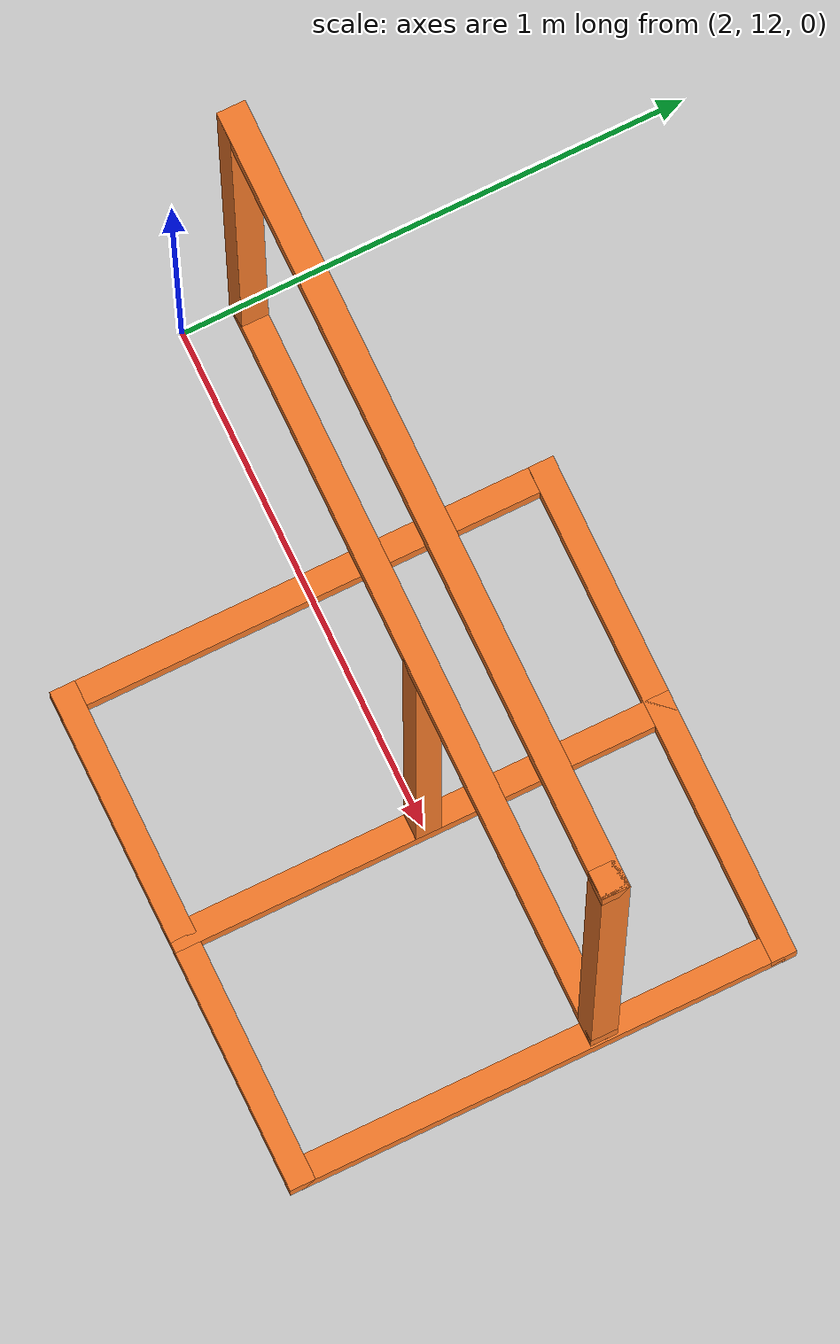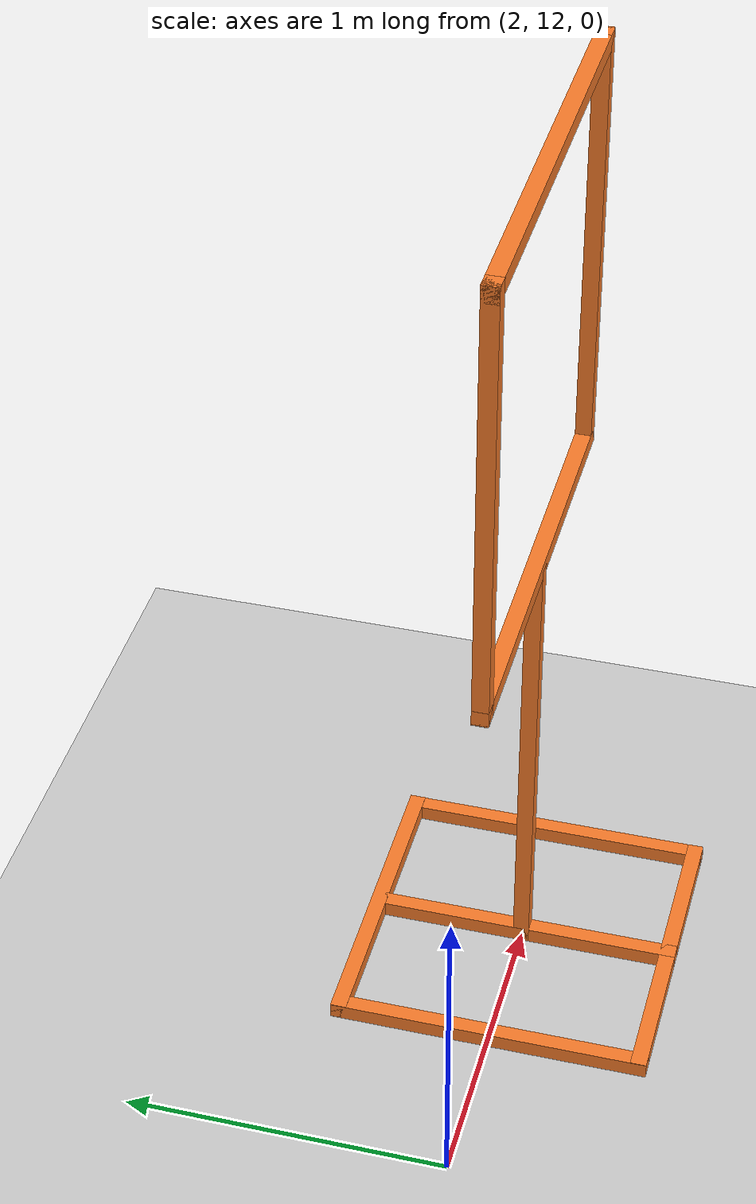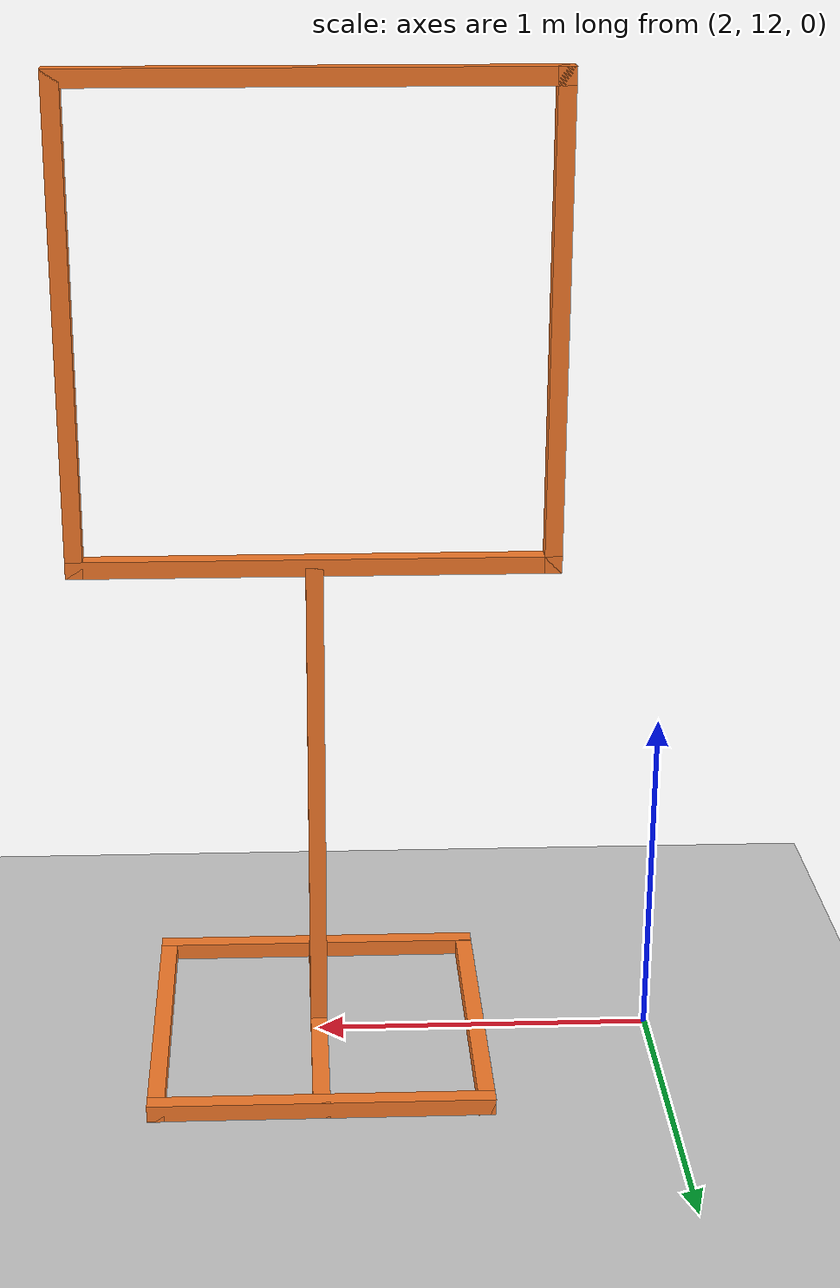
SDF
<sdf version="1.6">
 <world name="default">
  <model name="ground_plane">
   <static>1</static>
   <link name="link">
    <collision name="collision">
     <geometry><plane><normal>0 0 1</normal><size>100 100</size></plane></geometry>
     <surface><friction><ode><mu>100</mu><mu2>50</mu2></ode></friction></surface>
    </collision>
    <visual name="visual">
     <cast_shadows>0</cast_shadows>
     <geometry><plane><normal>0 0 1</normal><size>100 100</size></plane></geometry>
     <material>
      <script><uri>file://media/materials/scripts/gazebo.material</uri><name>Gazebo/Grey</name></script>
     </material>
    </visual>
    <velocity_decay><linear>0</linear><angular>0</angular></velocity_decay>
   </link>
  </model>
  <model name="adr2017_Small_Gate_5">
   <link name="link">
    <pose>0 0 0.75 0 -0 0</pose>
    <inertial>
     <mass>1</mass>
     <inertia>
      <ixx>0.166667</ixx>
      <ixy>0</ixy>
      <ixz>0</ixz>
      <iyy>0.166667</iyy>
      <iyz>0</iyz>
      <izz>0.166667</izz>
     </inertia>
    </inertial>
    <visual name="visual">
     <geometry><box><size>0.05 0.05 1.5</size></box></geometry>
     <material>
      <script><name>Gazebo/Grey</name><uri>file://media/materials/scripts/gazebo.material</uri></script>
      <shader type="vertex"><normal_map>__default__</normal_map></shader>
      <ambient>0.976 0.484 0.164 1</ambient>
      <diffuse>0.976 0.484 0.164 1</diffuse>
      <specular>0.01 0.01 0.01 1</specular>
      <emissive>0 0 0 1</emissive>
     </material>
    </visual>
    <collision name="collision">
     <geometry><box><size>0.05 0.05 1.5</size></box></geometry>
     <surface>
      <friction>
       <ode><mu>1</mu><mu2>1</mu2><fdir1>0 0 0</fdir1><slip1>0</slip1><slip2>0</slip2></ode>
       <torsional>
        <coefficient>1</coefficient>
        <patch_radius>0</patch_radius>
        <surface_radius>0</surface_radius>
        <use_patch_radius>1</use_patch_radius>
        <ode><slip>0</slip></ode>
       </torsional>
      </friction>
      <bounce><restitution_coefficient>0</restitution_coefficient><threshold>1e+06</threshold></bounce>
      <contact>
       <collide_without_contact>0</collide_without_contact>
       <collide_without_contact_bitmask>1</collide_without_contact_bitmask>
       <collide_bitmask>1</collide_bitmask>
       <ode>
        <soft_cfm>0</soft_cfm>
        <soft_erp>0.2</soft_erp>
        <kp>1e+13</kp>
        <kd>1</kd>
        <max_vel>0.01</max_vel>
        <min_depth>0</min_depth>
       </ode>
       <bullet>
        <split_impulse>1</split_impulse>
        <split_impulse_penetration_threshold>-0.01</split_impulse_penetration_threshold>
        <soft_cfm>0</soft_cfm>
        <soft_erp>0.2</soft_erp>
        <kp>1e+13</kp>
        <kd>1</kd>
       </bullet>
      </contact>
     </surface>
    </collision>
   </link>
   <link name="link_2">
    <pose>0 0 0.025 0 -0 0</pose>
    <inertial>
     <mass>1</mass>
     <inertia>
      <ixx>0.166667</ixx>
      <ixy>0</ixy>
      <ixz>0</ixz>
      <iyy>0.166667</iyy>
      <iyz>0</iyz>
      <izz>0.166667</izz>
     </inertia>
    </inertial>
    <visual name="visual">
     <geometry><box><size>0.05 1 0.05</size></box></geometry>
     <material>
      <script><name>Gazebo/Grey</name><uri>file://media/materials/scripts/gazebo.material</uri></script>
      <shader type="vertex"><normal_map>__default__</normal_map></shader>
      <ambient>0.976 0.484 0.164 1</ambient>
      <diffuse>0.976 0.484 0.164 1</diffuse>
      <specular>0.01 0.01 0.01 1</specular>
      <emissive>0 0 0 1</emissive>
     </material>
    </visual>
    <collision name="collision">
     <geometry><box><size>0.05 1 0.05</size></box></geometry>
     <surface>
      <friction>
       <ode><mu>1</mu><mu2>1</mu2><fdir1>0 0 0</fdir1><slip1>0</slip1><slip2>0</slip2></ode>
       <torsional>
        <coefficient>1</coefficient>
        <patch_radius>0</patch_radius>
        <surface_radius>0</surface_radius>
        <use_patch_radius>1</use_patch_radius>
        <ode><slip>0</slip></ode>
       </torsional>
      </friction>
      <bounce><restitution_coefficient>0</restitution_coefficient><threshold>1e+06</threshold></bounce>
      <contact>
       <collide_without_contact>0</collide_without_contact>
       <collide_without_contact_bitmask>1</collide_without_contact_bitmask>
       <collide_bitmask>1</collide_bitmask>
       <ode>
        <soft_cfm>0</soft_cfm>
        <soft_erp>0.2</soft_erp>
        <kp>1e+13</kp>
        <kd>1</kd>
        <max_vel>0.01</max_vel>
        <min_depth>0</min_depth>
       </ode>
       <bullet>
        <split_impulse>1</split_impulse>
        <split_impulse_penetration_threshold>-0.01</split_impulse_penetration_threshold>
        <soft_cfm>0</soft_cfm>
        <soft_erp>0.2</soft_erp>
        <kp>1e+13</kp>
        <kd>1</kd>
       </bullet>
      </contact>
     </surface>
    </collision>
   </link>
   <link name="link_3">
    <pose>0.475 0 0.024 0 -0 0</pose>
    <inertial>
     <mass>1</mass>
     <inertia>
      <ixx>0.166667</ixx>
      <ixy>0</ixy>
      <ixz>0</ixz>
      <iyy>0.166667</iyy>
      <iyz>0</iyz>
      <izz>0.166667</izz>
     </inertia>
    </inertial>
    <visual name="visual">
     <geometry><box><size>0.05 1 0.05</size></box></geometry>
     <material>
      <script><name>Gazebo/Grey</name><uri>file://media/materials/scripts/gazebo.material</uri></script>
      <shader type="vertex"><normal_map>__default__</normal_map></shader>
      <ambient>0.976 0.484 0.164 1</ambient>
      <diffuse>0.976 0.484 0.164 1</diffuse>
      <specular>0.01 0.01 0.01 1</specular>
      <emissive>0 0 0 1</emissive>
     </material>
    </visual>
    <collision name="collision">
     <geometry><box><size>0.05 1 0.05</size></box></geometry>
     <surface>
      <friction>
       <ode><mu>1</mu><mu2>1</mu2><fdir1>0 0 0</fdir1><slip1>0</slip1><slip2>0</slip2></ode>
       <torsional>
        <coefficient>1</coefficient>
        <patch_radius>0</patch_radius>
        <surface_radius>0</surface_radius>
        <use_patch_radius>1</use_patch_radius>
        <ode><slip>0</slip></ode>
       </torsional>
      </friction>
      <bounce><restitution_coefficient>0</restitution_coefficient><threshold>1e+06</threshold></bounce>
      <contact>
       <collide_without_contact>0</collide_without_contact>
       <collide_without_contact_bitmask>1</collide_without_contact_bitmask>
       <collide_bitmask>1</collide_bitmask>
       <ode>
        <soft_cfm>0</soft_cfm>
        <soft_erp>0.2</soft_erp>
        <kp>1e+13</kp>
        <kd>1</kd>
        <max_vel>0.01</max_vel>
        <min_depth>0</min_depth>
       </ode>
       <bullet>
        <split_impulse>1</split_impulse>
        <split_impulse_penetration_threshold>-0.01</split_impulse_penetration_threshold>
        <soft_cfm>0</soft_cfm>
        <soft_erp>0.2</soft_erp>
        <kp>1e+13</kp>
        <kd>1</kd>
       </bullet>
      </contact>
     </surface>
    </collision>
   </link>
   <link name="link_4">
    <pose>-0.475 0 0.024 0 -0 0</pose>
    <inertial>
     <mass>1</mass>
     <inertia>
      <ixx>0.166667</ixx>
      <ixy>0</ixy>
      <ixz>0</ixz>
      <iyy>0.166667</iyy>
      <iyz>0</iyz>
      <izz>0.166667</izz>
     </inertia>
    </inertial>
    <visual name="visual">
     <geometry><box><size>0.05 1 0.05</size></box></geometry>
     <material>
      <script><name>Gazebo/Grey</name><uri>file://media/materials/scripts/gazebo.material</uri></script>
      <shader type="vertex"><normal_map>__default__</normal_map></shader>
      <ambient>0.976 0.484 0.164 1</ambient>
      <diffuse>0.976 0.484 0.164 1</diffuse>
      <specular>0.01 0.01 0.01 1</specular>
      <emissive>0 0 0 1</emissive>
     </material>
    </visual>
    <collision name="collision">
     <geometry><box><size>0.05 1 0.05</size></box></geometry>
     <surface>
      <friction>
       <ode><mu>1</mu><mu2>1</mu2><fdir1>0 0 0</fdir1><slip1>0</slip1><slip2>0</slip2></ode>
       <torsional>
        <coefficient>1</coefficient>
        <patch_radius>0</patch_radius>
        <surface_radius>0</surface_radius>
        <use_patch_radius>1</use_patch_radius>
        <ode><slip>0</slip></ode>
       </torsional>
      </friction>
      <bounce><restitution_coefficient>0</restitution_coefficient><threshold>1e+06</threshold></bounce>
      <contact>
       <collide_without_contact>0</collide_without_contact>
       <collide_without_contact_bitmask>1</collide_without_contact_bitmask>
       <collide_bitmask>1</collide_bitmask>
       <ode>
        <soft_cfm>0</soft_cfm>
        <soft_erp>0.2</soft_erp>
        <kp>1e+13</kp>
        <kd>1</kd>
        <max_vel>0.01</max_vel>
        <min_depth>0</min_depth>
       </ode>
       <bullet>
        <split_impulse>1</split_impulse>
        <split_impulse_penetration_threshold>-0.01</split_impulse_penetration_threshold>
        <soft_cfm>0</soft_cfm>
        <soft_erp>0.2</soft_erp>
        <kp>1e+13</kp>
        <kd>1</kd>
       </bullet>
      </contact>
     </surface>
    </collision>
   </link>
   <link name="link_5">
    <pose>0 0.475 0.025 0 -0 0</pose>
    <inertial>
     <mass>1</mass>
     <inertia>
      <ixx>0.166667</ixx>
      <ixy>0</ixy>
      <ixz>0</ixz>
      <iyy>0.166667</iyy>
      <iyz>0</iyz>
      <izz>0.166667</izz>
     </inertia>
    </inertial>
    <visual name="visual">
     <geometry><box><size>1 0.05 0.05</size></box></geometry>
     <material>
      <script><name>Gazebo/Grey</name><uri>file://media/materials/scripts/gazebo.material</uri></script>
      <shader type="vertex"><normal_map>__default__</normal_map></shader>
      <ambient>0.976 0.484 0.164 1</ambient>
      <diffuse>0.976 0.484 0.164 1</diffuse>
      <specular>0.01 0.01 0.01 1</specular>
      <emissive>0 0 0 1</emissive>
     </material>
    </visual>
    <collision name="collision">
     <geometry><box><size>1 0.05 0.05</size></box></geometry>
     <surface>
      <friction>
       <ode><mu>1</mu><mu2>1</mu2><fdir1>0 0 0</fdir1><slip1>0</slip1><slip2>0</slip2></ode>
       <torsional>
        <coefficient>1</coefficient>
        <patch_radius>0</patch_radius>
        <surface_radius>0</surface_radius>
        <use_patch_radius>1</use_patch_radius>
        <ode><slip>0</slip></ode>
       </torsional>
      </friction>
      <bounce><restitution_coefficient>0</restitution_coefficient><threshold>1e+06</threshold></bounce>
      <contact>
       <collide_without_contact>0</collide_without_contact>
       <collide_without_contact_bitmask>1</collide_without_contact_bitmask>
       <collide_bitmask>1</collide_bitmask>
       <ode>
        <soft_cfm>0</soft_cfm>
        <soft_erp>0.2</soft_erp>
        <kp>1e+13</kp>
        <kd>1</kd>
        <max_vel>0.01</max_vel>
        <min_depth>0</min_depth>
       </ode>
       <bullet>
        <split_impulse>1</split_impulse>
        <split_impulse_penetration_threshold>-0.01</split_impulse_penetration_threshold>
        <soft_cfm>0</soft_cfm>
        <soft_erp>0.2</soft_erp>
        <kp>1e+13</kp>
        <kd>1</kd>
       </bullet>
      </contact>
     </surface>
    </collision>
   </link>
   <link name="link_6">
    <pose>0 -0.475 0.025 0 -0 0</pose>
    <inertial>
     <mass>1</mass>
     <inertia>
      <ixx>0.166667</ixx>
      <ixy>0</ixy>
      <ixz>0</ixz>
      <iyy>0.166667</iyy>
      <iyz>0</iyz>
      <izz>0.166667</izz>
     </inertia>
    </inertial>
    <visual name="visual">
     <geometry><box><size>1 0.05 0.05</size></box></geometry>
     <material>
      <script><name>Gazebo/Grey</name><uri>file://media/materials/scripts/gazebo.material</uri></script>
      <shader type="vertex"><normal_map>__default__</normal_map></shader>
      <ambient>0.976 0.484 0.164 1</ambient>
      <diffuse>0.976 0.484 0.164 1</diffuse>
      <specular>0.01 0.01 0.01 1</specular>
      <emissive>0 0 0 1</emissive>
     </material>
    </visual>
    <collision name="collision">
     <geometry><box><size>1 0.05 0.05</size></box></geometry>
     <surface>
      <friction>
       <ode><mu>1</mu><mu2>1</mu2><fdir1>0 0 0</fdir1><slip1>0</slip1><slip2>0</slip2></ode>
       <torsional>
        <coefficient>1</coefficient>
        <patch_radius>0</patch_radius>
        <surface_radius>0</surface_radius>
        <use_patch_radius>1</use_patch_radius>
        <ode><slip>0</slip></ode>
       </torsional>
      </friction>
      <bounce><restitution_coefficient>0</restitution_coefficient><threshold>1e+06</threshold></bounce>
      <contact>
       <collide_without_contact>0</collide_without_contact>
       <collide_without_contact_bitmask>1</collide_without_contact_bitmask>
       <collide_bitmask>1</collide_bitmask>
       <ode>
        <soft_cfm>0</soft_cfm>
        <soft_erp>0.2</soft_erp>
        <kp>1e+13</kp>
        <kd>1</kd>
        <max_vel>0.01</max_vel>
        <min_depth>0</min_depth>
       </ode>
       <bullet>
        <split_impulse>1</split_impulse>
        <split_impulse_penetration_threshold>-0.01</split_impulse_penetration_threshold>
        <soft_cfm>0</soft_cfm>
        <soft_erp>0.2</soft_erp>
        <kp>1e+13</kp>
        <kd>1</kd>
       </bullet>
      </contact>
     </surface>
    </collision>
   </link>
   <link name="link_7">
    <pose>0 0 2.85 0 -0 0</pose>
    <inertial>
     <mass>1</mass>
     <inertia>
      <ixx>0.166667</ixx>
      <ixy>0</ixy>
      <ixz>0</ixz>
      <iyy>0.166667</iyy>
      <iyz>0</iyz>
      <izz>0.166667</izz>
     </inertia>
    </inertial>
    <visual name="visual">
     <geometry><box><size>1.4 0.05 0.05</size></box></geometry>
     <material>
      <script><name>Gazebo/Grey</name><uri>file://media/materials/scripts/gazebo.material</uri></script>
      <shader type="vertex"><normal_map>__default__</normal_map></shader>
      <ambient>0.976 0.484 0.164 1</ambient>
      <diffuse>0.976 0.484 0.164 1</diffuse>
      <specular>0.01 0.01 0.01 1</specular>
      <emissive>0 0 0 1</emissive>
     </material>
    </visual>
    <collision name="collision">
     <geometry><box><size>1.4 0.05 0.05</size></box></geometry>
     <surface>
      <friction>
       <ode><mu>1</mu><mu2>1</mu2><fdir1>0 0 0</fdir1><slip1>0</slip1><slip2>0</slip2></ode>
       <torsional>
        <coefficient>1</coefficient>
        <patch_radius>0</patch_radius>
        <surface_radius>0</surface_radius>
        <use_patch_radius>1</use_patch_radius>
        <ode><slip>0</slip></ode>
       </torsional>
      </friction>
      <bounce><restitution_coefficient>0</restitution_coefficient><threshold>1e+06</threshold></bounce>
      <contact>
       <collide_without_contact>0</collide_without_contact>
       <collide_without_contact_bitmask>1</collide_without_contact_bitmask>
       <collide_bitmask>1</collide_bitmask>
       <ode>
        <soft_cfm>0</soft_cfm>
        <soft_erp>0.2</soft_erp>
        <kp>1e+13</kp>
        <kd>1</kd>
        <max_vel>0.01</max_vel>
        <min_depth>0</min_depth>
       </ode>
       <bullet>
        <split_impulse>1</split_impulse>
        <split_impulse_penetration_threshold>-0.01</split_impulse_penetration_threshold>
        <soft_cfm>0</soft_cfm>
        <soft_erp>0.2</soft_erp>
        <kp>1e+13</kp>
        <kd>1</kd>
       </bullet>
      </contact>
     </surface>
    </collision>
   </link>
   <link name="link_8">
    <pose>0 0 1.5 0 -0 0</pose>
    <inertial>
     <mass>1</mass>
     <inertia>
      <ixx>0.166667</ixx>
      <ixy>0</ixy>
      <ixz>0</ixz>
      <iyy>0.166667</iyy>
      <iyz>0</iyz>
      <izz>0.166667</izz>
     </inertia>
    </inertial>
    <visual name="visual">
     <geometry><box><size>1.4 0.05 0.05</size></box></geometry>
     <material>
      <script><name>Gazebo/Grey</name><uri>file://media/materials/scripts/gazebo.material</uri></script>
      <shader type="vertex"><normal_map>__default__</normal_map></shader>
      <ambient>0.976 0.484 0.164 1</ambient>
      <diffuse>0.976 0.484 0.164 1</diffuse>
      <specular>0.01 0.01 0.01 1</specular>
      <emissive>0 0 0 1</emissive>
     </material>
    </visual>
    <collision name="collision">
     <geometry><box><size>1.4 0.05 0.05</size></box></geometry>
     <surface>
      <friction>
       <ode><mu>1</mu><mu2>1</mu2><fdir1>0 0 0</fdir1><slip1>0</slip1><slip2>0</slip2></ode>
       <torsional>
        <coefficient>1</coefficient>
        <patch_radius>0</patch_radius>
        <surface_radius>0</surface_radius>
        <use_patch_radius>1</use_patch_radius>
        <ode><slip>0</slip></ode>
       </torsional>
      </friction>
      <bounce><restitution_coefficient>0</restitution_coefficient><threshold>1e+06</threshold></bounce>
      <contact>
       <collide_without_contact>0</collide_without_contact>
       <collide_without_contact_bitmask>1</collide_without_contact_bitmask>
       <collide_bitmask>1</collide_bitmask>
       <ode>
        <soft_cfm>0</soft_cfm>
        <soft_erp>0.2</soft_erp>
        <kp>1e+13</kp>
        <kd>1</kd>
        <max_vel>0.01</max_vel>
        <min_depth>0</min_depth>
       </ode>
       <bullet>
        <split_impulse>1</split_impulse>
        <split_impulse_penetration_threshold>-0.01</split_impulse_penetration_threshold>
        <soft_cfm>0</soft_cfm>
        <soft_erp>0.2</soft_erp>
        <kp>1e+13</kp>
        <kd>1</kd>
       </bullet>
      </contact>
     </surface>
    </collision>
   </link>
   <link name="link_9">
    <pose>-0.675 0 1.475 0 -0 0</pose>
    <inertial>
     <mass>1</mass>
     <inertia>
      <ixx>0.166667</ixx>
      <ixy>0</ixy>
      <ixz>0</ixz>
      <iyy>0.166667</iyy>
      <iyz>0</iyz>
      <izz>0.166667</izz>
     </inertia>
    </inertial>
    <visual name="visual">
     <geometry><box><size>0.05 0.05 1.4</size></box></geometry>
     <material>
      <script><name>Gazebo/Grey</name><uri>file://media/materials/scripts/gazebo.material</uri></script>
      <shader type="vertex"><normal_map>__default__</normal_map></shader>
      <ambient>0.976 0.484 0.164 1</ambient>
      <diffuse>0.976 0.484 0.164 1</diffuse>
      <specular>0.01 0.01 0.01 1</specular>
      <emissive>0 0 0 1</emissive>
     </material>
     <pose>0 0 0.7 0 -0 0</pose>
    </visual>
    <collision name="collision">
     <pose>0 0 0.7 0 -0 0</pose>
     <geometry><box><size>0.05 0.05 1.4</size></box></geometry>
     <surface>
      <friction>
       <ode><mu>1</mu><mu2>1</mu2><fdir1>0 0 0</fdir1><slip1>0</slip1><slip2>0</slip2></ode>
       <torsional>
        <coefficient>1</coefficient>
        <patch_radius>0</patch_radius>
        <surface_radius>0</surface_radius>
        <use_patch_radius>1</use_patch_radius>
        <ode><slip>0</slip></ode>
       </torsional>
      </friction>
      <bounce><restitution_coefficient>0</restitution_coefficient><threshold>1e+06</threshold></bounce>
      <contact>
       <collide_without_contact>0</collide_without_contact>
       <collide_without_contact_bitmask>1</collide_without_contact_bitmask>
       <collide_bitmask>1</collide_bitmask>
       <ode>
        <soft_cfm>0</soft_cfm>
        <soft_erp>0.2</soft_erp>
        <kp>1e+13</kp>
        <kd>1</kd>
        <max_vel>0.01</max_vel>
        <min_depth>0</min_depth>
       </ode>
       <bullet>
        <split_impulse>1</split_impulse>
        <split_impulse_penetration_threshold>-0.01</split_impulse_penetration_threshold>
        <soft_cfm>0</soft_cfm>
        <soft_erp>0.2</soft_erp>
        <kp>1e+13</kp>
        <kd>1</kd>
       </bullet>
      </contact>
     </surface>
    </collision>
   </link>
   <link name="link_10">
    <pose>0.675 0 1.475 0 -0 0</pose>
    <inertial>
     <mass>1</mass>
     <inertia>
      <ixx>0.166667</ixx>
      <ixy>0</ixy>
      <ixz>0</ixz>
      <iyy>0.166667</iyy>
      <iyz>0</iyz>
      <izz>0.166667</izz>
     </inertia>
    </inertial>
    <visual name="visual">
     <geometry><box><size>0.05 0.05 1.4</size></box></geometry>
     <material>
      <script><name>Gazebo/Grey</name><uri>file://media/materials/scripts/gazebo.material</uri></script>
      <shader type="vertex"><normal_map>__default__</normal_map></shader>
      <ambient>0.976 0.484 0.164 1</ambient>
      <diffuse>0.976 0.484 0.164 1</diffuse>
      <specular>0.01 0.01 0.01 1</specular>
      <emissive>0 0 0 1</emissive>
     </material>
     <pose>0 0 0.7 0 -0 0</pose>
    </visual>
    <collision name="collision">
     <pose>0 0 0.7 0 -0 0</pose>
     <geometry><box><size>0.05 0.05 1.4</size></box></geometry>
     <surface>
      <friction>
       <ode><mu>1</mu><mu2>1</mu2><fdir1>0 0 0</fdir1><slip1>0</slip1><slip2>0</slip2></ode>
       <torsional>
        <coefficient>1</coefficient>
        <patch_radius>0</patch_radius>
        <surface_radius>0</surface_radius>
        <use_patch_radius>1</use_patch_radius>
        <ode><slip>0</slip></ode>
       </torsional>
      </friction>
      <bounce><restitution_coefficient>0</restitution_coefficient><threshold>1e+06</threshold></bounce>
      <contact>
       <collide_without_contact>0</collide_without_contact>
       <collide_without_contact_bitmask>1</collide_without_contact_bitmask>
       <collide_bitmask>1</collide_bitmask>
       <ode>
        <soft_cfm>0</soft_cfm>
        <soft_erp>0.2</soft_erp>
        <kp>1e+13</kp>
        <kd>1</kd>
        <max_vel>0.01</max_vel>
        <min_depth>0</min_depth>
       </ode>
       <bullet>
        <split_impulse>1</split_impulse>
        <split_impulse_penetration_threshold>-0.01</split_impulse_penetration_threshold>
        <soft_cfm>0</soft_cfm>
        <soft_erp>0.2</soft_erp>
        <kp>1e+13</kp>
        <kd>1</kd>
       </bullet>
      </contact>
     </surface>
    </collision>
   </link>
   <static>1</static>
   <pose>3 12 0 0 -0 0</pose>
  </model>
 </world>
</sdf>
